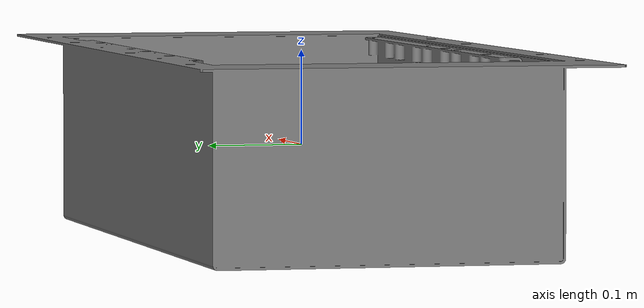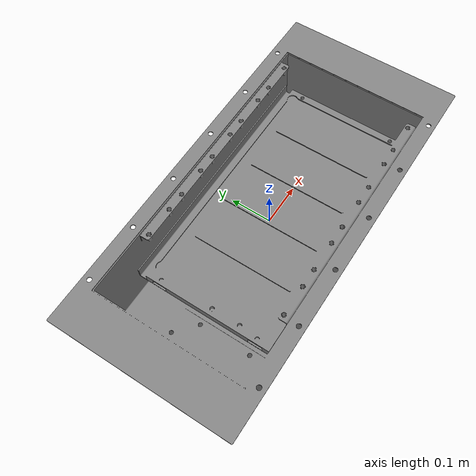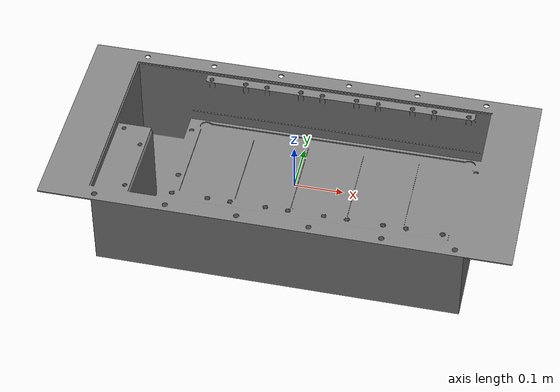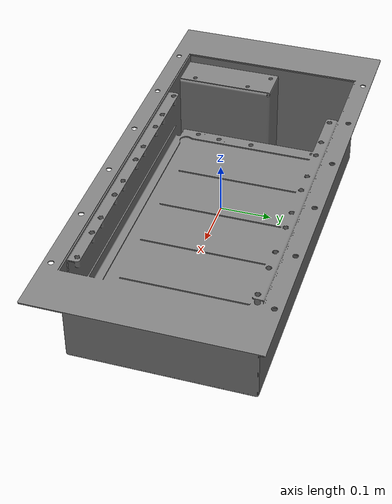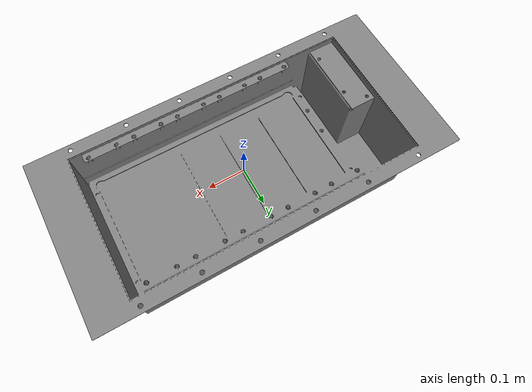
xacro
<?xml version="1.0"?>
<robot name="battery_pack" xmlns:xacro="http://ros.org/wiki/xacro">

  <!-- battery_pack center of obj/stl -->
  <link name="battery_pack">
        <visual>
        <origin rpy="0 0 0"/>
        <geometry>
          <mesh filename="file:///objects/battery_pack/meshes/battery_pack.stl">
            <scale>1 1 1</scale>
          </mesh>
        </geometry>
        <material name="grey">
          <color rgba="0.5 0.5 0.5 1.0"/>
        </material>
      </visual>
  </link>

  <!-- battery_pack grasping_frame -->
  <link name="battery_pack_grasping_frame">
    </link>

  <joint name="battery_pack_to_battery_pack_grasping_frame" type="fixed">
    <origin xyz="0.0 0.0 0.0" rpy="0 0 0"/>
    <parent link="battery_pack"/>
    <child link="battery_pack_grasping_frame" />
  </joint>

  <!-- battery_pack base -->
  <link name="battery_pack_base">
    </link>

  <joint name="battery_pack_to_battery_pack_base" type="fixed">
    <origin xyz="0.0 0.0 -0.1015" rpy="0 0 0"/>
    <parent link="battery_pack"/>
    <child link="battery_pack_base" />
  </joint>

</robot>
